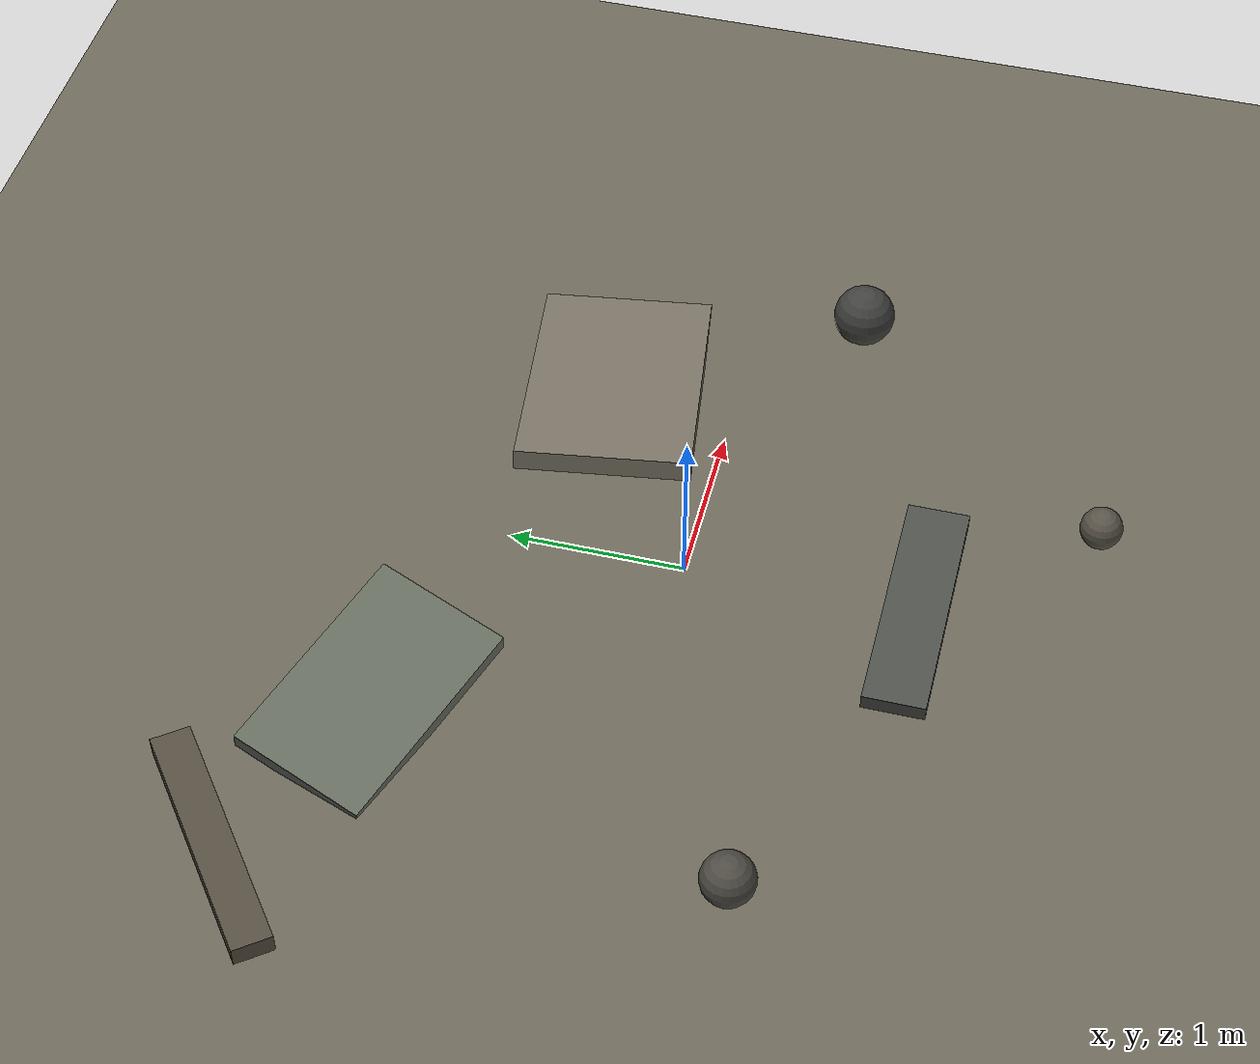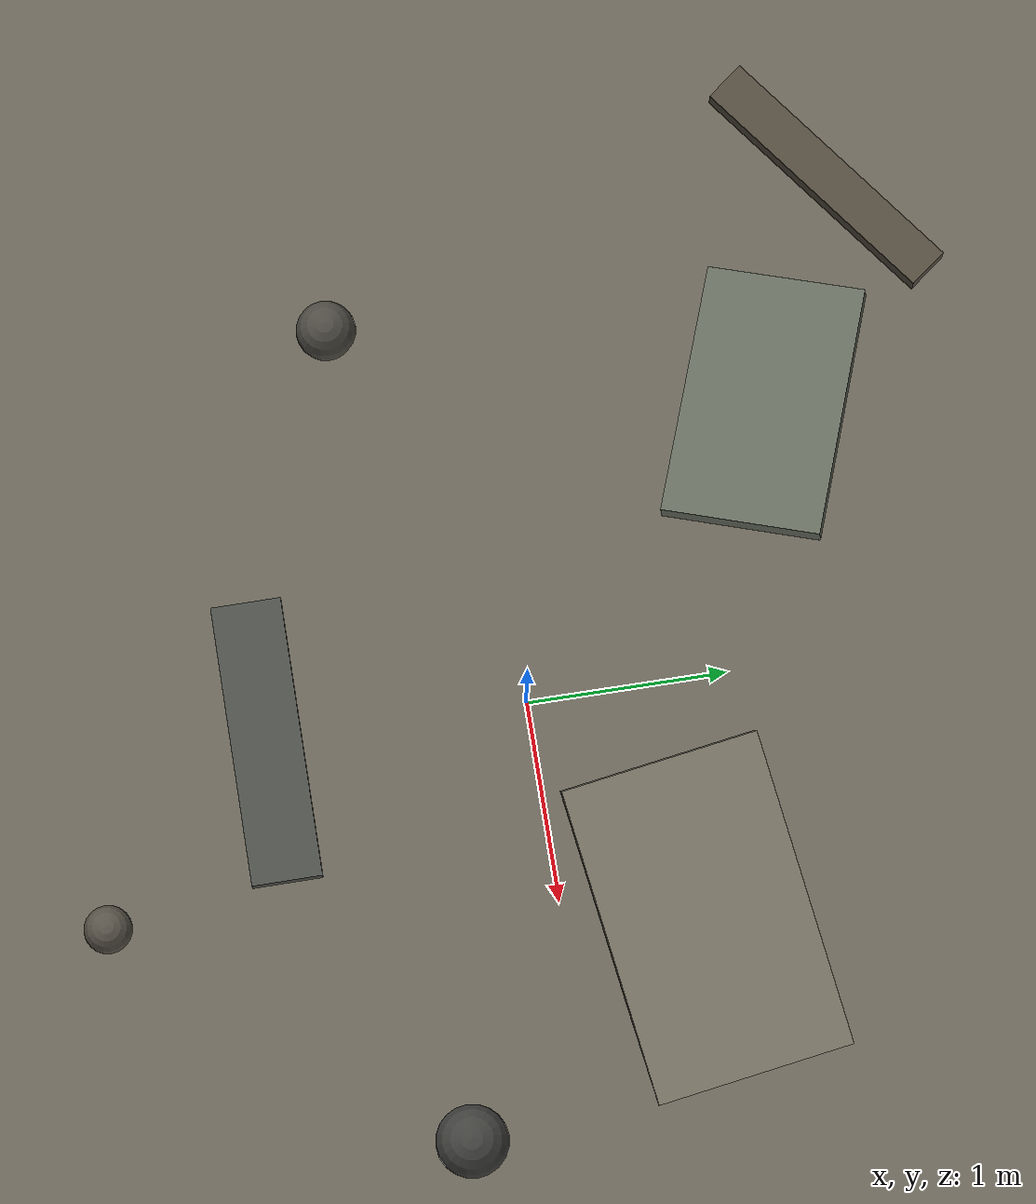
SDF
<?xml version="1.0"?>
<sdf version="1.9">
  <world name="brover_e5_rough_terrain">
    <plugin filename="gz-sim-physics-system" name="gz::sim::systems::Physics"/>
    <plugin filename="gz-sim-user-commands-system" name="gz::sim::systems::UserCommands"/>
    <plugin filename="gz-sim-scene-broadcaster-system" name="gz::sim::systems::SceneBroadcaster"/>
    <plugin filename="gz-sim-sensors-system" name="gz::sim::systems::Sensors">
      <render_engine>ogre2</render_engine>
    </plugin>

    <gravity>0 0 -9.81</gravity>
    <atmosphere type="adiabatic"/>
    <scene>
      <ambient>0.34 0.33 0.31 1</ambient>
      <background>0.65 0.70 0.75 1</background>
      <shadows>true</shadows>
    </scene>

    <light name="sun" type="directional">
      <cast_shadows>true</cast_shadows>
      <pose>0 0 10 0 0 0</pose>
      <diffuse>0.92 0.90 0.84 1</diffuse>
      <specular>0.10 0.10 0.10 1</specular>
      <direction>-0.35 0.45 -0.82</direction>
    </light>

    <model name="ground_plane">
      <static>true</static>
      <link name="link">
        <collision name="collision">
          <geometry>
            <plane>
              <normal>0 0 1</normal>
              <size>18 14</size>
            </plane>
          </geometry>
          <surface>
            <friction>
              <ode>
                <mu>1.3</mu>
                <mu2>1.3</mu2>
              </ode>
            </friction>
          </surface>
        </collision>
        <visual name="visual">
          <geometry>
            <plane>
              <normal>0 0 1</normal>
              <size>18 14</size>
            </plane>
          </geometry>
          <material>
            <ambient>0.42 0.40 0.35 1</ambient>
            <diffuse>0.42 0.40 0.35 1</diffuse>
            <specular>0.02 0.02 0.02 1</specular>
          </material>
        </visual>
      </link>
    </model>

    <model name="ramp_up">
      <static>true</static>
      <pose>1.2 0.7 0.105 0 0.18 0.15</pose>
      <link name="link">
        <collision name="collision">
          <geometry><box><size>1.6 1.0 0.12</size></box></geometry>
        </collision>
        <visual name="visual">
          <geometry><box><size>1.6 1.0 0.12</size></box></geometry>
          <material><diffuse>0.48 0.46 0.40 1</diffuse></material>
        </visual>
      </link>
    </model>

    <model name="ramp_side">
      <static>true</static>
      <pose>-1.3 1.4 0.09 0.12 -0.10 -0.35</pose>
      <link name="link">
        <collision name="collision">
          <geometry><box><size>1.3 0.8 0.10</size></box></geometry>
        </collision>
        <visual name="visual">
          <geometry><box><size>1.3 0.8 0.10</size></box></geometry>
          <material><diffuse>0.40 0.42 0.37 1</diffuse></material>
        </visual>
      </link>
    </model>

    <model name="short_step">
      <static>true</static>
      <pose>0.0 -1.3 0.045 0 0 0</pose>
      <link name="link">
        <collision name="collision">
          <geometry><box><size>1.4 0.35 0.09</size></box></geometry>
        </collision>
        <visual name="visual">
          <geometry><box><size>1.4 0.35 0.09</size></box></geometry>
          <material><diffuse>0.30 0.31 0.29 1</diffuse></material>
        </visual>
      </link>
    </model>

    <model name="rock_1">
      <static>true</static>
      <pose>2.1 -0.6 0.12 0 0 0</pose>
      <link name="link">
        <collision name="collision">
          <geometry><sphere><radius>0.18</radius></sphere></geometry>
        </collision>
        <visual name="visual">
          <geometry><sphere><radius>0.18</radius></sphere></geometry>
          <material><diffuse>0.25 0.25 0.24 1</diffuse></material>
        </visual>
      </link>
    </model>

    <model name="rock_2">
      <static>true</static>
      <pose>-2.0 -0.7 0.10 0 0 0</pose>
      <link name="link">
        <collision name="collision">
          <geometry><sphere><radius>0.15</radius></sphere></geometry>
        </collision>
        <visual name="visual">
          <geometry><sphere><radius>0.15</radius></sphere></geometry>
          <material><diffuse>0.30 0.29 0.26 1</diffuse></material>
        </visual>
      </link>
    </model>

    <model name="rock_3">
      <static>true</static>
      <pose>0.8 -2.2 0.08 0 0 0</pose>
      <link name="link">
        <collision name="collision">
          <geometry><sphere><radius>0.12</radius></sphere></geometry>
        </collision>
        <visual name="visual">
          <geometry><sphere><radius>0.12</radius></sphere></geometry>
          <material><diffuse>0.34 0.32 0.28 1</diffuse></material>
        </visual>
      </link>
    </model>

    <model name="offset_plank">
      <static>true</static>
      <pose>-2.4 1.9 0.06 0 0 0.65</pose>
      <link name="link">
        <collision name="collision">
          <geometry><box><size>1.4 0.22 0.12</size></box></geometry>
        </collision>
        <visual name="visual">
          <geometry><box><size>1.4 0.22 0.12</size></box></geometry>
          <material><diffuse>0.33 0.30 0.25 1</diffuse></material>
        </visual>
      </link>
    </model>
  </world>
</sdf>
